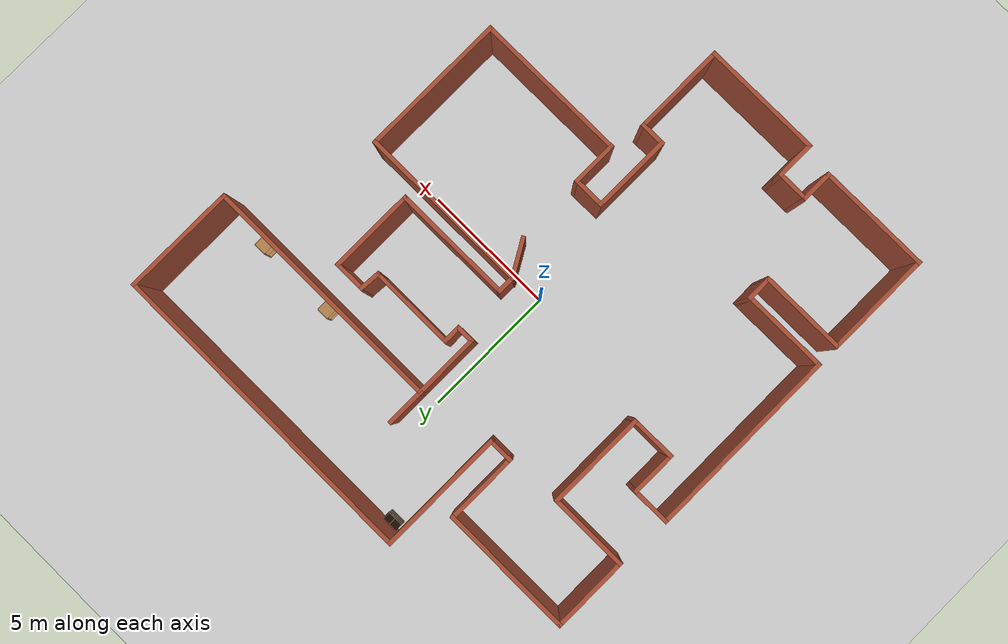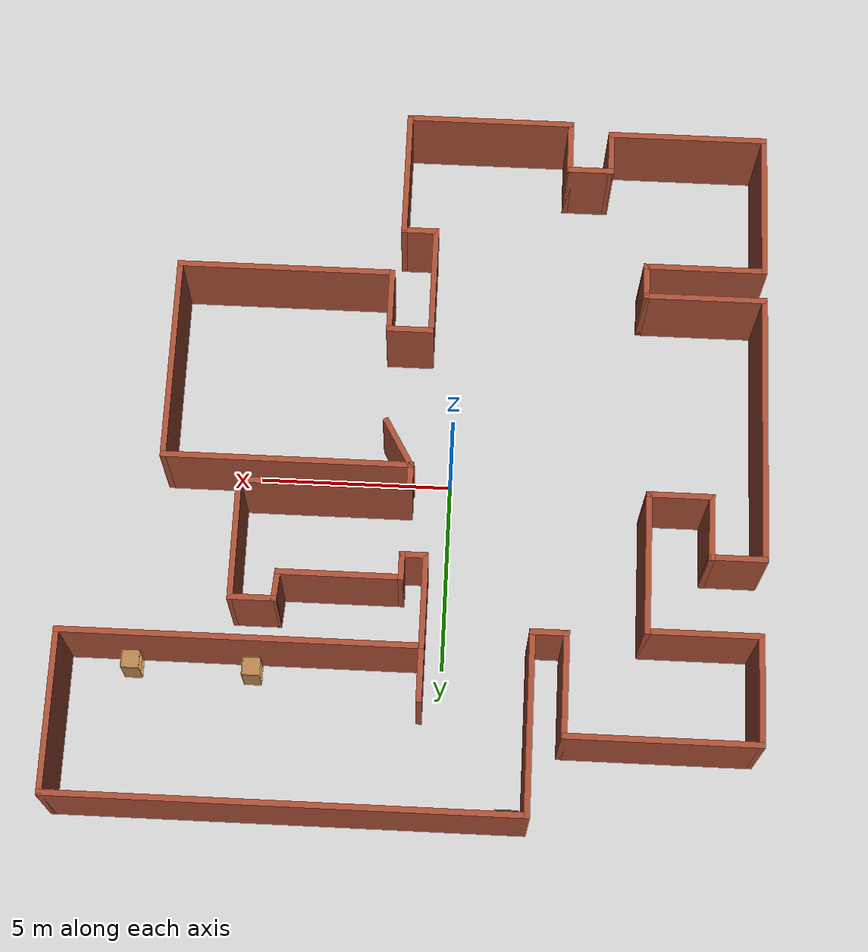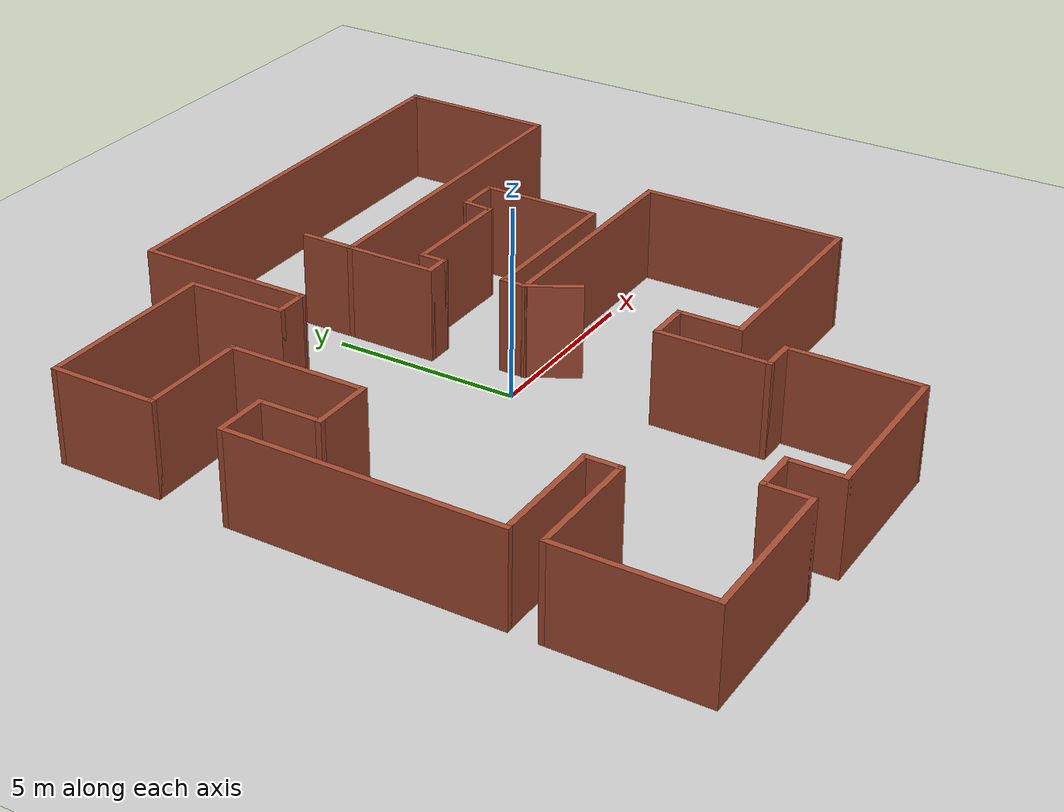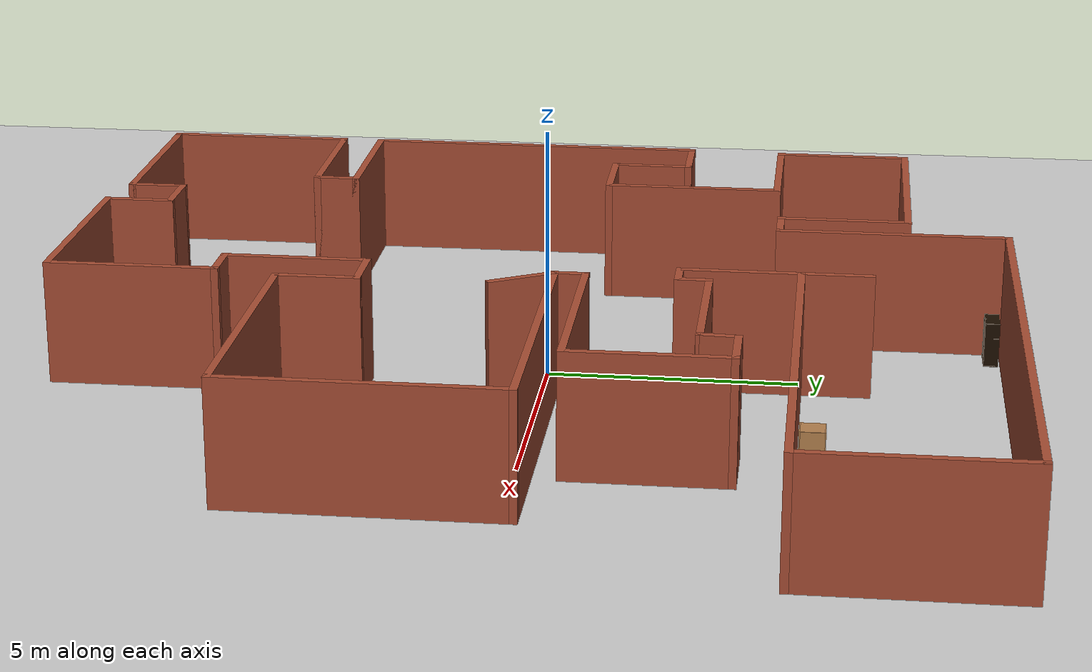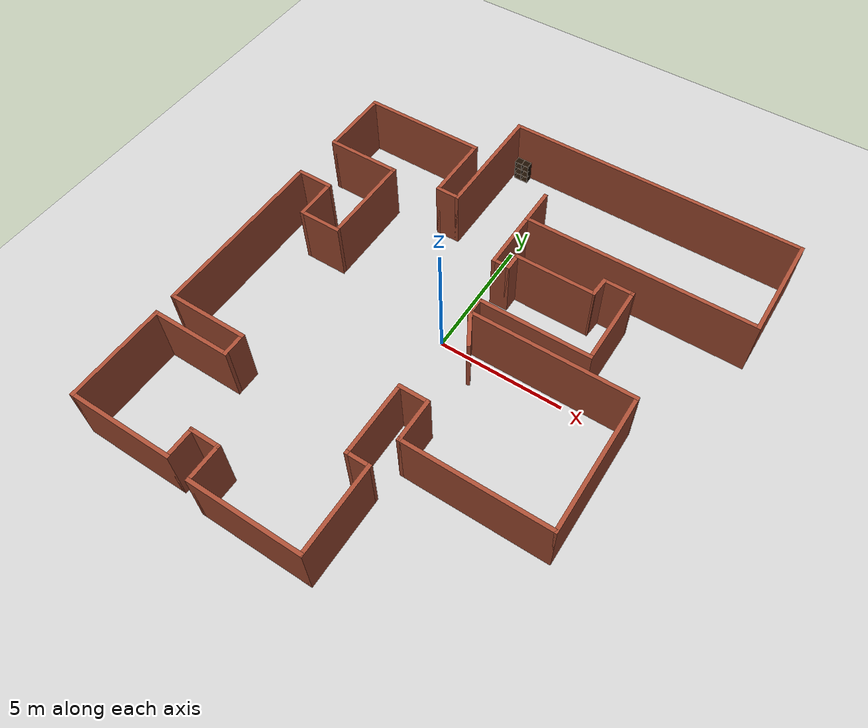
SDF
<sdf version="1.6">
 <world name="default">
  <model name="ground_plane">
   <static>1</static>
   <link name="link">
    <collision name="collision">
     <geometry><plane><normal>0 0 1</normal><size>100 100</size></plane></geometry>
     <surface>
      <contact><collide_bitmask>65535</collide_bitmask></contact>
      <friction><ode><mu>100</mu><mu2>50</mu2></ode></friction>
     </surface>
    </collision>
    <visual name="visual">
     <cast_shadows>0</cast_shadows>
     <geometry><plane><normal>0 0 1</normal><size>100 100</size></plane></geometry>
     <material>
      <script><uri>file://media/materials/scripts/gazebo.material</uri><name>Gazebo/Grey</name></script>
     </material>
    </visual>
   </link>
  </model>
  <model name="map_110">
   <pose>0.810849 -0.29415 0 0 -0 0</pose>
   <link name="Wall_22">
    <collision name="Wall_22_Collision">
     <geometry><box><size>2.8936 0.15 2.5</size></box></geometry>
     <pose>0 0 1.25 0 -0 0</pose>
    </collision>
    <visual name="Wall_22_Visual">
     <pose>0 0 1.25 0 -0 0</pose>
     <geometry><box><size>2.8936 0.15 2.5</size></box></geometry>
     <material>
      <script><uri>file://media/materials/scripts/gazebo.material</uri><name>Gazebo/Bricks</name></script>
      <ambient>1 1 1 1</ambient>
     </material>
     <meta><layer>0</layer></meta>
    </visual>
    <pose>-8.725 6.025 0 0 -0 -1.5708</pose>
   </link>
   <link name="Wall_23">
    <collision name="Wall_23_Collision">
     <geometry><box><size>3 0.15 2.5</size></box></geometry>
     <pose>0 0 1.25 0 -0 0</pose>
    </collision>
    <visual name="Wall_23_Visual">
     <pose>0 0 1.25 0 -0 0</pose>
     <geometry><box><size>3 0.15 2.5</size></box></geometry>
     <material>
      <script><uri>file://media/materials/scripts/gazebo.material</uri><name>Gazebo/Bricks</name></script>
      <ambient>1 1 1 1</ambient>
     </material>
     <meta><layer>0</layer></meta>
    </visual>
    <pose>-7.3 4.6532 0 0 -0 0</pose>
   </link>
   <link name="Wall_26">
    <collision name="Wall_26_Collision">
     <geometry><box><size>3.75 0.15 2.5</size></box></geometry>
     <pose>0 0 1.25 0 -0 0</pose>
    </collision>
    <visual name="Wall_26_Visual">
     <pose>0 0 1.25 0 -0 0</pose>
     <geometry><box><size>3.75 0.15 2.5</size></box></geometry>
     <material>
      <script><uri>file://media/materials/scripts/gazebo.material</uri><name>Gazebo/Bricks</name></script>
      <ambient>1 1 1 1</ambient>
     </material>
     <meta><layer>0</layer></meta>
    </visual>
    <pose>-5.875 2.8532 0 0 -0 -1.5708</pose>
   </link>
   <link name="Wall_27">
    <collision name="Wall_27_Collision">
     <geometry><box><size>1.75 0.15 2.5</size></box></geometry>
     <pose>0 0 1.25 0 -0 0</pose>
    </collision>
    <visual name="Wall_27_Visual">
     <pose>0 0 1.25 0 -0 0</pose>
     <geometry><box><size>1.75 0.15 2.5</size></box></geometry>
     <material>
      <script><uri>file://media/materials/scripts/gazebo.material</uri><name>Gazebo/Bricks</name></script>
      <ambient>1 1 1 1</ambient>
     </material>
     <meta><layer>0</layer></meta>
    </visual>
    <pose>-6.675 1.0532 0 0 -0 3.14159</pose>
   </link>
   <link name="Wall_28">
    <collision name="Wall_28_Collision">
     <geometry><box><size>1.75 0.15 2.5</size></box></geometry>
     <pose>0 0 1.25 0 -0 0</pose>
    </collision>
    <visual name="Wall_28_Visual">
     <pose>0 0 1.25 0 -0 0</pose>
     <geometry><box><size>1.75 0.15 2.5</size></box></geometry>
     <material>
      <script><uri>file://media/materials/scripts/gazebo.material</uri><name>Gazebo/Bricks</name></script>
      <ambient>1 1 1 1</ambient>
     </material>
     <meta><layer>0</layer></meta>
    </visual>
    <pose>-7.475 1.8532 0 0 -0 1.5708</pose>
   </link>
   <link name="Wall_29">
    <collision name="Wall_29_Collision">
     <geometry><box><size>1.5 0.15 2.5</size></box></geometry>
     <pose>0 0 1.25 0 -0 0</pose>
    </collision>
    <visual name="Wall_29_Visual">
     <pose>0 0 1.25 0 -0 0</pose>
     <geometry><box><size>1.5 0.15 2.5</size></box></geometry>
     <material>
      <script><uri>file://media/materials/scripts/gazebo.material</uri><name>Gazebo/Bricks</name></script>
      <ambient>1 1 1 1</ambient>
     </material>
     <meta><layer>0</layer></meta>
    </visual>
    <pose>-8.15 2.6532 0 0 -0 3.14159</pose>
   </link>
   <link name="Wall_31">
    <collision name="Wall_31_Collision">
     <geometry><box><size>7.25 0.15 2.5</size></box></geometry>
     <pose>0 0 1.25 0 -0 0</pose>
    </collision>
    <visual name="Wall_31_Visual">
     <pose>0 0 1.25 0 -0 0</pose>
     <geometry><box><size>7.25 0.15 2.5</size></box></geometry>
     <material>
      <script><uri>file://media/materials/scripts/gazebo.material</uri><name>Gazebo/Bricks</name></script>
      <ambient>1 1 1 1</ambient>
     </material>
     <meta><layer>0</layer></meta>
    </visual>
    <pose>-8.825 -0.8968 0 0 -0 -1.5708</pose>
   </link>
   <link name="Wall_32">
    <collision name="Wall_32_Collision">
     <geometry><box><size>3.25 0.15 2.5</size></box></geometry>
     <pose>0 0 1.25 0 -0 0</pose>
    </collision>
    <visual name="Wall_32_Visual">
     <pose>0 0 1.25 0 -0 0</pose>
     <geometry><box><size>3.25 0.15 2.5</size></box></geometry>
     <material>
      <script><uri>file://media/materials/scripts/gazebo.material</uri><name>Gazebo/Bricks</name></script>
      <ambient>1 1 1 1</ambient>
     </material>
     <meta><layer>0</layer></meta>
    </visual>
    <pose>-7.275 -4.4468 0 0 -0 0</pose>
   </link>
   <link name="Wall_33">
    <collision name="Wall_33_Collision">
     <geometry><box><size>1 0.15 2.5</size></box></geometry>
     <pose>0 0 1.25 0 -0 0</pose>
    </collision>
    <visual name="Wall_33_Visual">
     <pose>0 0 1.25 0 -0 0</pose>
     <geometry><box><size>1 0.15 2.5</size></box></geometry>
     <material>
      <script><uri>file://media/materials/scripts/gazebo.material</uri><name>Gazebo/Bricks</name></script>
      <ambient>1 1 1 1</ambient>
     </material>
     <meta><layer>0</layer></meta>
    </visual>
    <pose>-5.725 -4.8718 0 0 -0 -1.5708</pose>
   </link>
   <link name="Wall_34">
    <collision name="Wall_34_Collision">
     <geometry><box><size>3.25 0.15 2.5</size></box></geometry>
     <pose>0 0 1.25 0 -0 0</pose>
    </collision>
    <visual name="Wall_34_Visual">
     <pose>0 0 1.25 0 -0 0</pose>
     <geometry><box><size>3.25 0.15 2.5</size></box></geometry>
     <material>
      <script><uri>file://media/materials/scripts/gazebo.material</uri><name>Gazebo/Bricks</name></script>
      <ambient>1 1 1 1</ambient>
     </material>
     <meta><layer>0</layer></meta>
    </visual>
    <pose>-7.275 -5.2968 0 0 -0 3.14159</pose>
   </link>
   <link name="Wall_35">
    <collision name="Wall_35_Collision">
     <geometry><box><size>4 0.15 2.5</size></box></geometry>
     <pose>0 0 1.25 0 -0 0</pose>
    </collision>
    <visual name="Wall_35_Visual">
     <pose>0 0 1.25 0 -0 0</pose>
     <geometry><box><size>4 0.15 2.5</size></box></geometry>
     <material>
      <script><uri>file://media/materials/scripts/gazebo.material</uri><name>Gazebo/Bricks</name></script>
      <ambient>1 1 1 1</ambient>
     </material>
     <meta><layer>0</layer></meta>
    </visual>
    <pose>-8.825 -7.2218 0 0 -0 -1.5708</pose>
   </link>
   <link name="Wall_36">
    <collision name="Wall_36_Collision">
     <geometry><box><size>4.25 0.15 2.5</size></box></geometry>
     <pose>0 0 1.25 0 -0 0</pose>
    </collision>
    <visual name="Wall_36_Visual">
     <pose>0 0 1.25 0 -0 0</pose>
     <geometry><box><size>4.25 0.15 2.5</size></box></geometry>
     <material>
      <script><uri>file://media/materials/scripts/gazebo.material</uri><name>Gazebo/Bricks</name></script>
      <ambient>1 1 1 1</ambient>
     </material>
     <meta><layer>0</layer></meta>
    </visual>
    <pose>-6.775 -9.1468 0 0 -0 0</pose>
   </link>
   <link name="Wall_37">
    <collision name="Wall_37_Collision">
     <geometry><box><size>1.25 0.15 2.5</size></box></geometry>
     <pose>0 0 1.25 0 -0 0</pose>
    </collision>
    <visual name="Wall_37_Visual">
     <pose>0 0 1.25 0 -0 0</pose>
     <geometry><box><size>1.25 0.15 2.5</size></box></geometry>
     <material>
      <script><uri>file://media/materials/scripts/gazebo.material</uri><name>Gazebo/Bricks</name></script>
      <ambient>1 1 1 1</ambient>
     </material>
     <meta><layer>0</layer></meta>
    </visual>
    <pose>-4.725 -8.5968 0 0 -0 1.5708</pose>
   </link>
   <link name="Wall_38">
    <collision name="Wall_38_Collision">
     <geometry><box><size>1.25 0.15 2.5</size></box></geometry>
     <pose>0 0 1.25 0 -0 0</pose>
    </collision>
    <visual name="Wall_38_Visual">
     <pose>0 0 1.25 0 -0 0</pose>
     <geometry><box><size>1.25 0.15 2.5</size></box></geometry>
     <material>
      <script><uri>file://media/materials/scripts/gazebo.material</uri><name>Gazebo/Bricks</name></script>
      <ambient>1 1 1 1</ambient>
     </material>
     <meta><layer>0</layer></meta>
    </visual>
    <pose>-4.175 -8.0468 0 0 -0 0</pose>
   </link>
   <link name="Wall_39">
    <collision name="Wall_39_Collision">
     <geometry><box><size>1.5 0.15 2.5</size></box></geometry>
     <pose>0 0 1.25 0 -0 0</pose>
    </collision>
    <visual name="Wall_39_Visual">
     <pose>0 0 1.25 0 -0 0</pose>
     <geometry><box><size>1.5 0.15 2.5</size></box></geometry>
     <material>
      <script><uri>file://media/materials/scripts/gazebo.material</uri><name>Gazebo/Bricks</name></script>
      <ambient>1 1 1 1</ambient>
     </material>
     <meta><layer>0</layer></meta>
    </visual>
    <pose>-3.625 -8.7218 0 0 -0 -1.5708</pose>
   </link>
   <link name="Wall_40">
    <collision name="Wall_40_Collision">
     <geometry><box><size>4.5 0.15 2.5</size></box></geometry>
     <pose>0 0 1.25 0 -0 0</pose>
    </collision>
    <visual name="Wall_40_Visual">
     <pose>0 0 1.25 0 -0 0</pose>
     <geometry><box><size>4.5 0.15 2.5</size></box></geometry>
     <material>
      <script><uri>file://media/materials/scripts/gazebo.material</uri><name>Gazebo/Bricks</name></script>
      <ambient>1 1 1 1</ambient>
     </material>
     <meta><layer>0</layer></meta>
    </visual>
    <pose>-1.45 -9.3968 0 0 -0 0</pose>
   </link>
   <link name="Wall_54">
    <collision name="Wall_54_Collision">
     <geometry><box><size>3.5 0.15 2.5</size></box></geometry>
     <pose>0 0 1.25 0 -0 0</pose>
    </collision>
    <visual name="Wall_54_Visual">
     <pose>0 0 1.25 0 -0 0</pose>
     <geometry><box><size>3.5 0.15 2.5</size></box></geometry>
     <material>
      <script><uri>file://media/materials/scripts/gazebo.material</uri><name>Gazebo/Bricks</name></script>
      <ambient>1 1 1 1</ambient>
     </material>
     <meta><layer>0</layer></meta>
    </visual>
    <pose>0.725 -7.7218 0 0 -0 1.5708</pose>
   </link>
   <link name="Wall_55">
    <collision name="Wall_55_Collision">
     <geometry><box><size>1 0.15 2.5</size></box></geometry>
     <pose>0 0 1.25 0 -0 0</pose>
    </collision>
    <visual name="Wall_55_Visual">
     <pose>0 0 1.25 0 -0 0</pose>
     <geometry><box><size>1 0.15 2.5</size></box></geometry>
     <material>
      <script><uri>file://media/materials/scripts/gazebo.material</uri><name>Gazebo/Bricks</name></script>
      <ambient>1 1 1 1</ambient>
     </material>
     <meta><layer>0</layer></meta>
    </visual>
    <pose>0.3 -6.0468 0 0 -0 3.14159</pose>
   </link>
   <link name="Wall_56">
    <collision name="Wall_56_Collision">
     <geometry><box><size>3 0.15 2.5</size></box></geometry>
     <pose>0 0 1.25 0 -0 0</pose>
    </collision>
    <visual name="Wall_56_Visual">
     <pose>0 0 1.25 0 -0 0</pose>
     <geometry><box><size>3 0.15 2.5</size></box></geometry>
     <material>
      <script><uri>file://media/materials/scripts/gazebo.material</uri><name>Gazebo/Bricks</name></script>
      <ambient>1 1 1 1</ambient>
     </material>
     <meta><layer>0</layer></meta>
    </visual>
    <pose>-0.125 -4.6218 0 0 -0 1.5708</pose>
   </link>
   <link name="Wall_57">
    <collision name="Wall_57_Collision">
     <geometry><box><size>1.25 0.15 2.5</size></box></geometry>
     <pose>0 0 1.25 0 -0 0</pose>
    </collision>
    <visual name="Wall_57_Visual">
     <pose>0 0 1.25 0 -0 0</pose>
     <geometry><box><size>1.25 0.15 2.5</size></box></geometry>
     <material>
      <script><uri>file://media/materials/scripts/gazebo.material</uri><name>Gazebo/Bricks</name></script>
      <ambient>1 1 1 1</ambient>
     </material>
     <meta><layer>0</layer></meta>
    </visual>
    <pose>0.425 -3.1968 0 0 -0 0</pose>
   </link>
   <link name="Wall_58">
    <collision name="Wall_58_Collision">
     <geometry><box><size>1.75 0.15 2.5</size></box></geometry>
     <pose>0 0 1.25 0 -0 0</pose>
    </collision>
    <visual name="Wall_58_Visual">
     <pose>0 0 1.25 0 -0 0</pose>
     <geometry><box><size>1.75 0.15 2.5</size></box></geometry>
     <material>
      <script><uri>file://media/materials/scripts/gazebo.material</uri><name>Gazebo/Bricks</name></script>
      <ambient>1 1 1 1</ambient>
     </material>
     <meta><layer>0</layer></meta>
    </visual>
    <pose>0.975 -3.9968 0 0 -0 -1.5708</pose>
   </link>
   <link name="Wall_59">
    <collision name="Wall_59_Collision">
     <geometry><box><size>5.75 0.15 2.5</size></box></geometry>
     <pose>0 0 1.25 0 -0 0</pose>
    </collision>
    <visual name="Wall_59_Visual">
     <pose>0 0 1.25 0 -0 0</pose>
     <geometry><box><size>5.75 0.15 2.5</size></box></geometry>
     <material>
      <script><uri>file://media/materials/scripts/gazebo.material</uri><name>Gazebo/Bricks</name></script>
      <ambient>1 1 1 1</ambient>
     </material>
     <meta><layer>0</layer></meta>
    </visual>
    <pose>3.775 -4.7968 0 0 -0 0</pose>
   </link>
   <link name="Wall_60">
    <collision name="Wall_60_Collision">
     <geometry><box><size>5.5 0.15 2.5</size></box></geometry>
     <pose>0 0 1.25 0 -0 0</pose>
    </collision>
    <visual name="Wall_60_Visual">
     <pose>0 0 1.25 0 -0 0</pose>
     <geometry><box><size>5.5 0.15 2.5</size></box></geometry>
     <material>
      <script><uri>file://media/materials/scripts/gazebo.material</uri><name>Gazebo/Bricks</name></script>
      <ambient>1 1 1 1</ambient>
     </material>
     <meta><layer>0</layer></meta>
    </visual>
    <pose>6.575 -2.1218 0 0 -0 1.5708</pose>
   </link>
   <link name="Wall_61">
    <collision name="Wall_61_Collision">
     <geometry><box><size>6.5 0.15 2.5</size></box></geometry>
     <pose>0 0 1.25 0 -0 0</pose>
    </collision>
    <visual name="Wall_61_Visual">
     <pose>0 0 1.25 0 -0 0</pose>
     <geometry><box><size>6.5 0.15 2.5</size></box></geometry>
     <material>
      <script><uri>file://media/materials/scripts/gazebo.material</uri><name>Gazebo/Bricks</name></script>
      <ambient>1 1 1 1</ambient>
     </material>
     <meta><layer>0</layer></meta>
    </visual>
    <pose>3.4 0.5532 0 0 -0 3.14159</pose>
   </link>
   <link name="Wall_62">
    <collision name="Wall_62_Collision">
     <geometry><box><size>0.75 0.15 2.5</size></box></geometry>
     <pose>0 0 1.25 0 -0 0</pose>
    </collision>
    <visual name="Wall_62_Visual">
     <pose>0 0 1.25 0 -0 0</pose>
     <geometry><box><size>0.75 0.15 2.5</size></box></geometry>
     <material>
      <script><uri>file://media/materials/scripts/gazebo.material</uri><name>Gazebo/Bricks</name></script>
      <ambient>1 1 1 1</ambient>
     </material>
     <meta><layer>0</layer></meta>
    </visual>
    <pose>0.225 0.8532 0 0 -0 1.5708</pose>
   </link>
   <link name="Wall_63">
    <collision name="Wall_63_Collision">
     <geometry><box><size>4.5 0.15 2.5</size></box></geometry>
     <pose>0 0 1.25 0 -0 0</pose>
    </collision>
    <visual name="Wall_63_Visual">
     <pose>0 0 1.25 0 -0 0</pose>
     <geometry><box><size>4.5 0.15 2.5</size></box></geometry>
     <material>
      <script><uri>file://media/materials/scripts/gazebo.material</uri><name>Gazebo/Bricks</name></script>
      <ambient>1 1 1 1</ambient>
     </material>
     <meta><layer>0</layer></meta>
    </visual>
    <pose>2.4 1.1532 0 0 -0 0</pose>
   </link>
   <link name="Wall_64">
    <collision name="Wall_64_Collision">
     <geometry><box><size>3.25 0.15 2.5</size></box></geometry>
     <pose>0 0 1.25 0 -0 0</pose>
    </collision>
    <visual name="Wall_64_Visual">
     <pose>0 0 1.25 0 -0 0</pose>
     <geometry><box><size>3.25 0.15 2.5</size></box></geometry>
     <material>
      <script><uri>file://media/materials/scripts/gazebo.material</uri><name>Gazebo/Bricks</name></script>
      <ambient>1 1 1 1</ambient>
     </material>
     <meta><layer>0</layer></meta>
    </visual>
    <pose>4.575 2.7032 0 0 -0 1.5708</pose>
   </link>
   <link name="Wall_65">
    <collision name="Wall_65_Collision">
     <geometry><box><size>1.25 0.15 2.5</size></box></geometry>
     <pose>0 0 1.25 0 -0 0</pose>
    </collision>
    <visual name="Wall_65_Visual">
     <pose>0 0 1.25 0 -0 0</pose>
     <geometry><box><size>1.25 0.15 2.5</size></box></geometry>
     <material>
      <script><uri>file://media/materials/scripts/gazebo.material</uri><name>Gazebo/Bricks</name></script>
      <ambient>1 1 1 1</ambient>
     </material>
     <meta><layer>0</layer></meta>
    </visual>
    <pose>4.025 4.2532 0 0 -0 3.14159</pose>
   </link>
   <link name="Wall_70">
    <collision name="Wall_70_Collision">
     <geometry><box><size>5 0.15 2.5</size></box></geometry>
     <pose>0 0 1.25 0 -0 0</pose>
    </collision>
    <visual name="Wall_70_Visual">
     <pose>0 0 1.25 0 -0 0</pose>
     <geometry><box><size>5 0.15 2.5</size></box></geometry>
     <material>
      <script><uri>file://media/materials/scripts/gazebo.material</uri><name>Gazebo/Bricks</name></script>
      <ambient>1 1 1 1</ambient>
     </material>
     <meta><layer>0</layer></meta>
    </visual>
    <pose>-6.3 7.3968 0 0 -0 0</pose>
   </link>
   <link name="Wall_71">
    <collision name="Wall_71_Collision">
     <geometry><box><size>2.75 0.15 2.5</size></box></geometry>
     <pose>0 0 1.25 0 -0 0</pose>
    </collision>
    <visual name="Wall_71_Visual">
     <pose>0 0 1.25 0 -0 0</pose>
     <geometry><box><size>2.75 0.15 2.5</size></box></geometry>
     <material>
      <script><uri>file://media/materials/scripts/gazebo.material</uri><name>Gazebo/Bricks</name></script>
      <ambient>1 1 1 1</ambient>
     </material>
     <meta><layer>0</layer></meta>
    </visual>
    <pose>-3.875 6.0968 0 0 -0 -1.5708</pose>
   </link>
   <link name="Wall_72">
    <collision name="Wall_72_Collision">
     <geometry><box><size>1 0.15 2.5</size></box></geometry>
     <pose>0 0 1.25 0 -0 0</pose>
    </collision>
    <visual name="Wall_72_Visual">
     <pose>0 0 1.25 0 -0 0</pose>
     <geometry><box><size>1 0.15 2.5</size></box></geometry>
     <material>
      <script><uri>file://media/materials/scripts/gazebo.material</uri><name>Gazebo/Bricks</name></script>
      <ambient>1 1 1 1</ambient>
     </material>
     <meta><layer>0</layer></meta>
    </visual>
    <pose>-3.45 4.7968 0 0 -0 0</pose>
   </link>
   <link name="Wall_73">
    <collision name="Wall_73_Collision">
     <geometry><box><size>4.75 0.15 2.5</size></box></geometry>
     <pose>0 0 1.25 0 -0 0</pose>
    </collision>
    <visual name="Wall_73_Visual">
     <pose>0 0 1.25 0 -0 0</pose>
     <geometry><box><size>4.75 0.15 2.5</size></box></geometry>
     <material>
      <script><uri>file://media/materials/scripts/gazebo.material</uri><name>Gazebo/Bricks</name></script>
      <ambient>1 1 1 1</ambient>
     </material>
     <meta><layer>0</layer></meta>
    </visual>
    <pose>-3.025 7.0968 0 0 -0 1.5708</pose>
   </link>
   <link name="Wall_74">
    <collision name="Wall_74_Collision">
     <geometry><box><size>12 0.15 2.5</size></box></geometry>
     <pose>0 0 1.25 0 -0 0</pose>
    </collision>
    <visual name="Wall_74_Visual">
     <pose>0 0 1.25 0 -0 0</pose>
     <geometry><box><size>12 0.15 2.5</size></box></geometry>
     <material>
      <script><uri>file://media/materials/scripts/gazebo.material</uri><name>Gazebo/Bricks</name></script>
      <ambient>1 1 1 1</ambient>
     </material>
     <meta><layer>0</layer></meta>
    </visual>
    <pose>2.9 9.3968 0 0 -0 0</pose>
   </link>
   <link name="Wall_75">
    <collision name="Wall_75_Collision">
     <geometry><box><size>4.25 0.15 2.5</size></box></geometry>
     <pose>0 0 1.25 0 -0 0</pose>
    </collision>
    <visual name="Wall_75_Visual">
     <pose>0 0 1.25 0 -0 0</pose>
     <geometry><box><size>4.25 0.15 2.5</size></box></geometry>
     <material>
      <script><uri>file://media/materials/scripts/gazebo.material</uri><name>Gazebo/Bricks</name></script>
      <ambient>1 1 1 1</ambient>
     </material>
     <meta><layer>0</layer></meta>
    </visual>
    <pose>8.825 7.3468 0 0 -0 -1.5708</pose>
   </link>
   <link name="Wall_76">
    <collision name="Wall_76_Collision">
     <geometry><box><size>9.25 0.15 2.5</size></box></geometry>
     <pose>0 0 1.25 0 -0 0</pose>
    </collision>
    <visual name="Wall_76_Visual">
     <pose>0 0 1.25 0 -0 0</pose>
     <geometry><box><size>9.25 0.15 2.5</size></box></geometry>
     <material>
      <script><uri>file://media/materials/scripts/gazebo.material</uri><name>Gazebo/Bricks</name></script>
      <ambient>1 1 1 1</ambient>
     </material>
     <meta><layer>0</layer></meta>
    </visual>
    <pose>4.275 5.2968 0 0 -0 3.14159</pose>
   </link>
   <link name="Wall_77">
    <collision name="Wall_77_Collision">
     <geometry><box><size>1.5 0.15 2.5</size></box></geometry>
     <pose>0 0 1.25 0 -0 0</pose>
    </collision>
    <visual name="Wall_77_Visual">
     <pose>0 0 1.25 0 -0 0</pose>
     <geometry><box><size>1.5 0.15 2.5</size></box></geometry>
     <material>
      <script><uri>file://media/materials/scripts/gazebo.material</uri><name>Gazebo/Bricks</name></script>
      <ambient>1 1 1 1</ambient>
     </material>
     <meta><layer>0</layer></meta>
    </visual>
    <pose>-0.275 5.9718 0 0 -0 1.5708</pose>
   </link>
   <link name="Wall_79">
    <collision name="Wall_79_Collision">
     <geometry><box><size>2.5 0.15 2.5</size></box></geometry>
     <pose>0 0 1.25 0 -0 0</pose>
    </collision>
    <visual name="Wall_79_Visual">
     <pose>0 0 1.25 0 -0 0</pose>
     <geometry><box><size>2.5 0.15 2.5</size></box></geometry>
     <material>
      <script><uri>file://media/materials/scripts/gazebo.material</uri><name>Gazebo/Bricks</name></script>
      <ambient>1 1 1 1</ambient>
     </material>
     <meta><layer>0</layer></meta>
    </visual>
    <pose>-0.275 4.1218 0 0 -0 -1.5708</pose>
   </link>
   <link name="Wall_81">
    <collision name="Wall_81_Collision">
     <geometry><box><size>0.75 0.15 2.5</size></box></geometry>
     <pose>0 0 1.25 0 -0 0</pose>
    </collision>
    <visual name="Wall_81_Visual">
     <pose>0 0 1.25 0 -0 0</pose>
     <geometry><box><size>0.75 0.15 2.5</size></box></geometry>
     <material>
      <script><uri>file://media/materials/scripts/gazebo.material</uri><name>Gazebo/Bricks</name></script>
      <ambient>1 1 1 1</ambient>
     </material>
     <meta><layer>0</layer></meta>
    </visual>
    <pose>0.025 2.9468 0 0 -0 0</pose>
   </link>
   <link name="Wall_82">
    <collision name="Wall_82_Collision">
     <geometry><box><size>0.75 0.15 2.5</size></box></geometry>
     <pose>0 0 1.25 0 -0 0</pose>
    </collision>
    <visual name="Wall_82_Visual">
     <pose>0 0 1.25 0 -0 0</pose>
     <geometry><box><size>0.75 0.15 2.5</size></box></geometry>
     <material>
      <script><uri>file://media/materials/scripts/gazebo.material</uri><name>Gazebo/Bricks</name></script>
      <ambient>1 1 1 1</ambient>
     </material>
     <meta><layer>0</layer></meta>
    </visual>
    <pose>0.325 3.2468 0 0 -0 1.5708</pose>
   </link>
   <link name="Wall_83">
    <collision name="Wall_83_Collision">
     <geometry><box><size>3.25 0.15 2.5</size></box></geometry>
     <pose>0 0 1.25 0 -0 0</pose>
    </collision>
    <visual name="Wall_83_Visual">
     <pose>0 0 1.25 0 -0 0</pose>
     <geometry><box><size>3.25 0.15 2.5</size></box></geometry>
     <material>
      <script><uri>file://media/materials/scripts/gazebo.material</uri><name>Gazebo/Bricks</name></script>
      <ambient>1 1 1 1</ambient>
     </material>
     <meta><layer>0</layer></meta>
    </visual>
    <pose>1.875 3.5468 0 0 -0 0</pose>
   </link>
   <link name="Wall_85">
    <collision name="Wall_85_Collision">
     <geometry><box><size>0.858168 0.15 2.5</size></box></geometry>
     <pose>0 0 1.25 0 -0 0</pose>
    </collision>
    <visual name="Wall_85_Visual">
     <pose>0 0 1.25 0 -0 0</pose>
     <geometry><box><size>0.858168 0.15 2.5</size></box></geometry>
     <material>
      <script><uri>file://media/materials/scripts/gazebo.material</uri><name>Gazebo/Bricks</name></script>
      <ambient>1 1 1 1</ambient>
     </material>
     <meta><layer>0</layer></meta>
    </visual>
    <pose>3.45 3.9 0 0 -0 -1.64146</pose>
   </link>
   <link name="Wall_89">
    <collision name="Wall_89_Collision">
     <geometry><box><size>1.5 0.15 2.5</size></box></geometry>
     <pose>0 0 1.25 0 -0 0</pose>
    </collision>
    <visual name="Wall_89_Visual">
     <pose>0 0 1.25 0 -0 0</pose>
     <geometry><box><size>1.5 0.15 2.5</size></box></geometry>
     <material>
      <script><uri>file://media/materials/scripts/gazebo.material</uri><name>Gazebo/Bricks</name></script>
      <ambient>1 1 1 1</ambient>
     </material>
     <meta><layer>0</layer></meta>
    </visual>
    <pose>0.5625 -0.031367 0 0 -0 -1.0472</pose>
   </link>
   <static>1</static>
  </model>
  <model name="cabinet_0">
   <static>1</static>
   <link name="cabinet_bottom_plate">
    <inertial>
     <pose>0 0 -1 0 -0 0</pose>
     <inertia><ixx>2.05</ixx><ixy>0</ixy><ixz>0</ixz><iyy>2.05</iyy><iyz>0</iyz><izz>2.05</izz></inertia>
     <mass>25</mass>
    </inertial>
    <collision name="cabinet_bottom_plate_geom">
     <pose>0 0 0.01 0 -0 0</pose>
     <geometry><box><size>0.45 0.45 0.02</size></box></geometry>
    </collision>
    <visual name="cabinet_bottom_plate_geom_visual">
     <pose>0 0 0.01 0 -0 0</pose>
     <geometry><box><size>0.45 0.45 0.02</size></box></geometry>
     <material>
      <script><uri>file://media/materials/scripts/gazebo.material</uri><name>Gazebo/Wood</name></script>
     </material>
    </visual>
    <collision name="cabinet_bottom_plate_geom_cabinet_back_plate">
     <pose>0.235 0 0.51 0 -0 0</pose>
     <geometry><box><size>0.02 0.45 1.02</size></box></geometry>
    </collision>
    <visual name="cabinet_bottom_plate_geom_cabinet_back_plate_visual">
     <pose>0.235 0 0.51 0 -0 0</pose>
     <geometry><box><size>0.02 0.45 1.02</size></box></geometry>
     <material>
      <script><uri>file://media/materials/scripts/gazebo.material</uri><name>Gazebo/Wood</name></script>
     </material>
    </visual>
    <collision name="cabinet_bottom_plate_geom_cabinet_left_plate">
     <pose>0 0.235 0.51 0 -0 0</pose>
     <geometry><box><size>0.45 0.02 1.02</size></box></geometry>
    </collision>
    <visual name="cabinet_bottom_plate_geom_cabinet_left_plate_visual">
     <pose>0 0.235 0.51 0 -0 0</pose>
     <geometry><box><size>0.45 0.02 1.02</size></box></geometry>
     <material>
      <script><uri>file://media/materials/scripts/gazebo.material</uri><name>Gazebo/Wood</name></script>
     </material>
    </visual>
    <collision name="cabinet_bottom_plate_geom_cabinet_middle_plate">
     <pose>0 0 0.51 0 -0 0</pose>
     <geometry><box><size>0.45 0.45 0.02</size></box></geometry>
    </collision>
    <visual name="cabinet_bottom_plate_geom_cabinet_middle_plate_visual">
     <pose>0 0 0.51 0 -0 0</pose>
     <geometry><box><size>0.45 0.45 0.02</size></box></geometry>
     <material>
      <script><uri>file://media/materials/scripts/gazebo.material</uri><name>Gazebo/Wood</name></script>
     </material>
    </visual>
    <collision name="cabinet_bottom_plate_geom_cabinet_right_plate">
     <pose>0 -0.235 0.51 0 -0 0</pose>
     <geometry><box><size>0.45 0.02 1.02</size></box></geometry>
    </collision>
    <visual name="cabinet_bottom_plate_geom_cabinet_right_plate_visual">
     <pose>0 -0.235 0.51 0 -0 0</pose>
     <geometry><box><size>0.45 0.02 1.02</size></box></geometry>
     <material>
      <script><uri>file://media/materials/scripts/gazebo.material</uri><name>Gazebo/Wood</name></script>
     </material>
    </visual>
    <collision name="cabinet_bottom_plate_geom_cabinet_top_plate">
     <pose>0 0 1.01 0 -0 0</pose>
     <geometry><box><size>0.45 0.45 0.02</size></box></geometry>
    </collision>
    <visual name="cabinet_bottom_plate_geom_cabinet_top_plate_visual">
     <pose>0 0 1.01 0 -0 0</pose>
     <geometry><box><size>0.45 0.45 0.02</size></box></geometry>
     <material>
      <script><uri>file://media/materials/scripts/gazebo.material</uri><name>Gazebo/Wood</name></script>
     </material>
    </visual>
   </link>
   <pose>4.85123 5.35333 0 0 -0 0</pose>
  </model>
  <model name="cabinet_1">
   <static>1</static>
   <link name="cabinet_bottom_plate">
    <inertial>
     <pose>0 0 -1 0 -0 0</pose>
     <inertia><ixx>2.05</ixx><ixy>0</ixy><ixz>0</ixz><iyy>2.05</iyy><iyz>0</iyz><izz>2.05</izz></inertia>
     <mass>25</mass>
    </inertial>
    <collision name="cabinet_bottom_plate_geom">
     <pose>0 0 0.01 0 -0 0</pose>
     <geometry><box><size>0.45 0.45 0.02</size></box></geometry>
    </collision>
    <visual name="cabinet_bottom_plate_geom_visual">
     <pose>0 0 0.01 0 -0 0</pose>
     <geometry><box><size>0.45 0.45 0.02</size></box></geometry>
     <material>
      <script><uri>file://media/materials/scripts/gazebo.material</uri><name>Gazebo/Wood</name></script>
     </material>
    </visual>
    <collision name="cabinet_bottom_plate_geom_cabinet_back_plate">
     <pose>0.235 0 0.51 0 -0 0</pose>
     <geometry><box><size>0.02 0.45 1.02</size></box></geometry>
    </collision>
    <visual name="cabinet_bottom_plate_geom_cabinet_back_plate_visual">
     <pose>0.235 0 0.51 0 -0 0</pose>
     <geometry><box><size>0.02 0.45 1.02</size></box></geometry>
     <material>
      <script><uri>file://media/materials/scripts/gazebo.material</uri><name>Gazebo/Wood</name></script>
     </material>
    </visual>
    <collision name="cabinet_bottom_plate_geom_cabinet_left_plate">
     <pose>0 0.235 0.51 0 -0 0</pose>
     <geometry><box><size>0.45 0.02 1.02</size></box></geometry>
    </collision>
    <visual name="cabinet_bottom_plate_geom_cabinet_left_plate_visual">
     <pose>0 0.235 0.51 0 -0 0</pose>
     <geometry><box><size>0.45 0.02 1.02</size></box></geometry>
     <material>
      <script><uri>file://media/materials/scripts/gazebo.material</uri><name>Gazebo/Wood</name></script>
     </material>
    </visual>
    <collision name="cabinet_bottom_plate_geom_cabinet_middle_plate">
     <pose>0 0 0.51 0 -0 0</pose>
     <geometry><box><size>0.45 0.45 0.02</size></box></geometry>
    </collision>
    <visual name="cabinet_bottom_plate_geom_cabinet_middle_plate_visual">
     <pose>0 0 0.51 0 -0 0</pose>
     <geometry><box><size>0.45 0.45 0.02</size></box></geometry>
     <material>
      <script><uri>file://media/materials/scripts/gazebo.material</uri><name>Gazebo/Wood</name></script>
     </material>
    </visual>
    <collision name="cabinet_bottom_plate_geom_cabinet_right_plate">
     <pose>0 -0.235 0.51 0 -0 0</pose>
     <geometry><box><size>0.45 0.02 1.02</size></box></geometry>
    </collision>
    <visual name="cabinet_bottom_plate_geom_cabinet_right_plate_visual">
     <pose>0 -0.235 0.51 0 -0 0</pose>
     <geometry><box><size>0.45 0.02 1.02</size></box></geometry>
     <material>
      <script><uri>file://media/materials/scripts/gazebo.material</uri><name>Gazebo/Wood</name></script>
     </material>
    </visual>
    <collision name="cabinet_bottom_plate_geom_cabinet_top_plate">
     <pose>0 0 1.01 0 -0 0</pose>
     <geometry><box><size>0.45 0.45 0.02</size></box></geometry>
    </collision>
    <visual name="cabinet_bottom_plate_geom_cabinet_top_plate_visual">
     <pose>0 0 1.01 0 -0 0</pose>
     <geometry><box><size>0.45 0.45 0.02</size></box></geometry>
     <material>
      <script><uri>file://media/materials/scripts/gazebo.material</uri><name>Gazebo/Wood</name></script>
     </material>
    </visual>
   </link>
   <pose>7.93508 5.30401 0 0 -0 0</pose>
  </model>
  <model name="6_Cube_StorageE_0">
   <link name="Wall_0">
    <pose>0 0 0.01 0 -0 0</pose>
    <inertial>
     <mass>1.6201</mass>
     <inertia><ixx>0.0119</ixx><iyy>0.0631</iyy><izz>0.0513</izz><ixy>0</ixy><ixz>0</ixz><iyz>0</iyz></inertia>
    </inertial>
    <collision name="Wall_0_Collision"><geometry><box><size>0.616 0.296 0.02</size></box></geometry></collision>
    <visual name="Wall_0_Visual">
     <geometry><box><size>0.616 0.296 0.02</size></box></geometry>
     <material>
      <script><uri>file://media/materials/scripts/gazebo.material</uri><name>Gazebo/Grey</name></script>
      <ambient>0.105882 0.0509804 0 1</ambient>
     </material>
    </visual>
   </link>
   <joint name="0_2" type="fixed">
    <pose>-0.308 0 0 0 -0 0</pose>
    <parent>Wall_2</parent>
    <child>Wall_0</child>
    <axis>
     <xyz>1 0 0</xyz>
     <use_parent_model_frame>0</use_parent_model_frame>
     <limit><lower>-1e+16</lower><upper>1e+16</upper></limit>
    </axis>
   </joint>
   <joint name="0_12" type="fixed">
    <parent>Wall_12</parent>
    <child>Wall_0</child>
    <axis>
     <xyz>0 0 1</xyz>
     <use_parent_model_frame>0</use_parent_model_frame>
     <limit><lower>-1e+16</lower><upper>1e+16</upper></limit>
    </axis>
   </joint>
   <joint name="0_4" type="fixed">
    <pose>0.308 0 0 0 -0 0</pose>
    <parent>Wall_4</parent>
    <child>Wall_0</child>
    <axis>
     <xyz>1 0 0</xyz>
     <use_parent_model_frame>0</use_parent_model_frame>
     <limit><lower>-1e+16</lower><upper>1e+16</upper></limit>
    </axis>
   </joint>
   <link name="Wall_10">
    <pose>0 0 0.61 0 -0 0</pose>
    <inertial>
     <mass>1.6201</mass>
     <inertia><ixx>0.0119</ixx><iyy>0.0631</iyy><izz>0.0513</izz><ixy>0</ixy><ixz>0</ixz><iyz>0</iyz></inertia>
    </inertial>
    <collision name="Wall_10_Collision"><geometry><box><size>0.616 0.296 0.02</size></box></geometry></collision>
    <visual name="Wall_10_Visual">
     <geometry><box><size>0.616 0.296 0.02</size></box></geometry>
     <material>
      <script><uri>file://media/materials/scripts/gazebo.material</uri><name>Gazebo/Grey</name></script>
      <ambient>0.105882 0.0509804 0 1</ambient>
     </material>
    </visual>
   </link>
   <joint name="10_2" type="fixed">
    <pose>-0.308 0 0 0 -0 0</pose>
    <parent>Wall_2</parent>
    <child>Wall_10</child>
    <axis>
     <xyz>1 0 0</xyz>
     <use_parent_model_frame>0</use_parent_model_frame>
     <limit><lower>-1e+16</lower><upper>1e+16</upper></limit>
    </axis>
   </joint>
   <joint name="10_12" type="fixed">
    <parent>Wall_12</parent>
    <child>Wall_10</child>
    <axis>
     <xyz>0 0 1</xyz>
     <use_parent_model_frame>0</use_parent_model_frame>
     <limit><lower>-1e+16</lower><upper>1e+16</upper></limit>
    </axis>
   </joint>
   <joint name="10_4" type="fixed">
    <pose>0.308 0 0 0 -0 0</pose>
    <parent>Wall_4</parent>
    <child>Wall_10</child>
    <axis>
     <xyz>1 0 0</xyz>
     <use_parent_model_frame>0</use_parent_model_frame>
     <limit><lower>-1e+16</lower><upper>1e+16</upper></limit>
    </axis>
   </joint>
   <link name="Wall_12">
    <pose>0 0 0.4575 0 -0 0</pose>
    <inertial>
     <mass>2.4065</mass>
     <inertia><ixx>0.0177</ixx><iyy>0.1855</iyy><izz>0.168</izz><ixy>0</ixy><ixz>0</ixz><iyz>0</iyz></inertia>
    </inertial>
    <collision name="Wall_12_Collision"><geometry><box><size>0.02 0.296 0.915</size></box></geometry></collision>
    <visual name="Wall_12_Visual">
     <geometry><box><size>0.02 0.296 0.915</size></box></geometry>
     <material>
      <script><uri>file://media/materials/scripts/gazebo.material</uri><name>Gazebo/Grey</name></script>
      <ambient>0.105882 0.0509804 0 1</ambient>
     </material>
    </visual>
   </link>
   <link name="Wall_2">
    <pose>-0.298 0 0.4575 0 -0 0</pose>
    <inertial>
     <mass>2.4065</mass>
     <inertia><ixx>0.0177</ixx><iyy>0.1855</iyy><izz>0.168</izz><ixy>0</ixy><ixz>0</ixz><iyz>0</iyz></inertia>
    </inertial>
    <collision name="Wall_2_Collision"><geometry><box><size>0.02 0.296 0.915</size></box></geometry></collision>
    <visual name="Wall_2_Visual">
     <geometry><box><size>0.02 0.296 0.915</size></box></geometry>
     <material>
      <script><uri>file://media/materials/scripts/gazebo.material</uri><name>Gazebo/Grey</name></script>
      <ambient>0.105882 0.0509804 0 1</ambient>
     </material>
    </visual>
   </link>
   <link name="Wall_4">
    <pose>0.298 0 0.4575 0 -0 0</pose>
    <inertial>
     <mass>2.4065</mass>
     <inertia><ixx>0.0177</ixx><iyy>0.1855</iyy><izz>0.168</izz><ixy>0</ixy><ixz>0</ixz><iyz>0</iyz></inertia>
    </inertial>
    <collision name="Wall_4_Collision"><geometry><box><size>0.02 0.296 0.915</size></box></geometry></collision>
    <visual name="Wall_4_Visual">
     <geometry><box><size>0.02 0.296 0.915</size></box></geometry>
     <material>
      <script><uri>file://media/materials/scripts/gazebo.material</uri><name>Gazebo/Grey</name></script>
      <ambient>0.105882 0.0509804 0 1</ambient>
     </material>
    </visual>
   </link>
   <link name="Wall_6">
    <pose>0 0 0.905 0 -0 0</pose>
    <inertial>
     <mass>1.6201</mass>
     <inertia><ixx>0.0119</ixx><iyy>0.0631</iyy><izz>0.0513</izz><ixy>0</ixy><ixz>0</ixz><iyz>0</iyz></inertia>
    </inertial>
    <collision name="Wall_6_Collision"><geometry><box><size>0.616 0.296 0.02</size></box></geometry></collision>
    <visual name="Wall_6_Visual">
     <geometry><box><size>0.616 0.296 0.02</size></box></geometry>
     <material>
      <script><uri>file://media/materials/scripts/gazebo.material</uri><name>Gazebo/Grey</name></script>
      <ambient>0.105882 0.0509804 0 1</ambient>
     </material>
    </visual>
   </link>
   <joint name="6_2" type="fixed">
    <pose>-0.308 0 0 0 -0 0</pose>
    <parent>Wall_2</parent>
    <child>Wall_6</child>
    <axis>
     <xyz>2 0 0</xyz>
     <use_parent_model_frame>0</use_parent_model_frame>
     <limit><lower>-1e+16</lower><upper>1e+16</upper></limit>
    </axis>
   </joint>
   <joint name="6_12" type="fixed">
    <parent>Wall_12</parent>
    <child>Wall_6</child>
    <axis>
     <xyz>0 0 1</xyz>
     <use_parent_model_frame>0</use_parent_model_frame>
     <limit><lower>-1e+16</lower><upper>1e+16</upper></limit>
    </axis>
   </joint>
   <joint name="6_4" type="fixed">
    <pose>0.308 0 0 0 -0 0</pose>
    <parent>Wall_4</parent>
    <child>Wall_6</child>
    <axis>
     <xyz>1 0 0</xyz>
     <use_parent_model_frame>0</use_parent_model_frame>
     <limit><lower>-1e+16</lower><upper>1e+16</upper></limit>
    </axis>
   </joint>
   <link name="Wall_8">
    <pose>0 0 0.305 0 -0 0</pose>
    <inertial>
     <mass>1.6201</mass>
     <inertia><ixx>0.0119</ixx><iyy>0.0631</iyy><izz>0.0513</izz><ixy>0</ixy><ixz>0</ixz><iyz>0</iyz></inertia>
    </inertial>
    <collision name="Wall_8_Collision"><geometry><box><size>0.616 0.296 0.02</size></box></geometry></collision>
    <visual name="Wall_8_Visual">
     <geometry><box><size>0.616 0.296 0.02</size></box></geometry>
     <material>
      <script><uri>file://media/materials/scripts/gazebo.material</uri><name>Gazebo/Grey</name></script>
      <ambient>0.105882 0.0509804 0 1</ambient>
     </material>
    </visual>
   </link>
   <joint name="8_2" type="fixed">
    <pose>-0.308 0 0 0 -0 0</pose>
    <parent>Wall_2</parent>
    <child>Wall_8</child>
    <axis>
     <xyz>1 0 0</xyz>
     <use_parent_model_frame>0</use_parent_model_frame>
     <limit><lower>-1e+16</lower><upper>1e+16</upper></limit>
    </axis>
   </joint>
   <joint name="8_12" type="fixed">
    <parent>Wall_12</parent>
    <child>Wall_8</child>
    <axis>
     <xyz>0 0 1</xyz>
     <use_parent_model_frame>0</use_parent_model_frame>
     <limit><lower>-1e+16</lower><upper>1e+16</upper></limit>
    </axis>
   </joint>
   <joint name="8_4" type="fixed">
    <pose>0.308 0 0 0 -0 0</pose>
    <parent>Wall_4</parent>
    <child>Wall_8</child>
    <axis>
     <xyz>1 0 0</xyz>
     <use_parent_model_frame>0</use_parent_model_frame>
     <limit><lower>-1e+16</lower><upper>1e+16</upper></limit>
    </axis>
   </joint>
   <static>1</static>
   <pose>-1.77023 8.84109 0 0 -0 0</pose>
  </model>
 </world>
</sdf>
